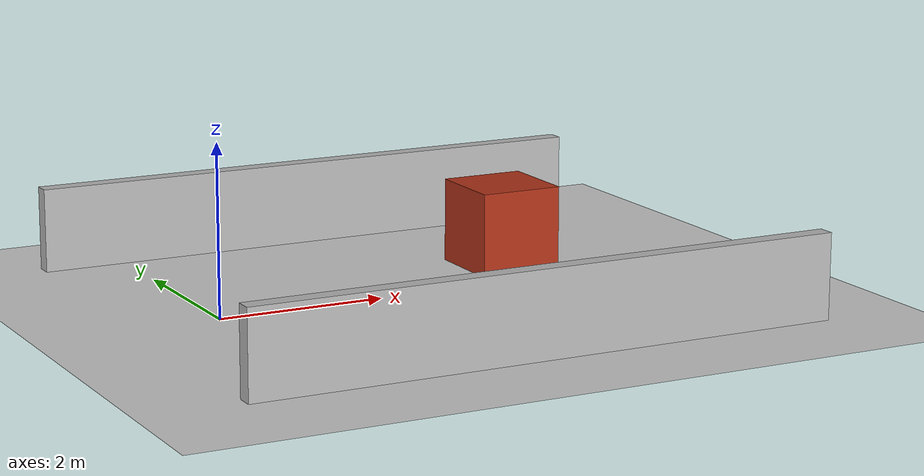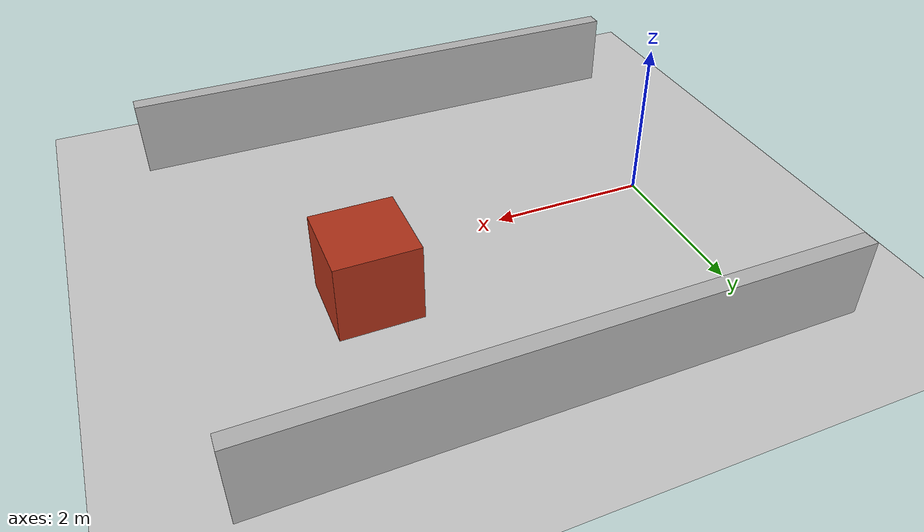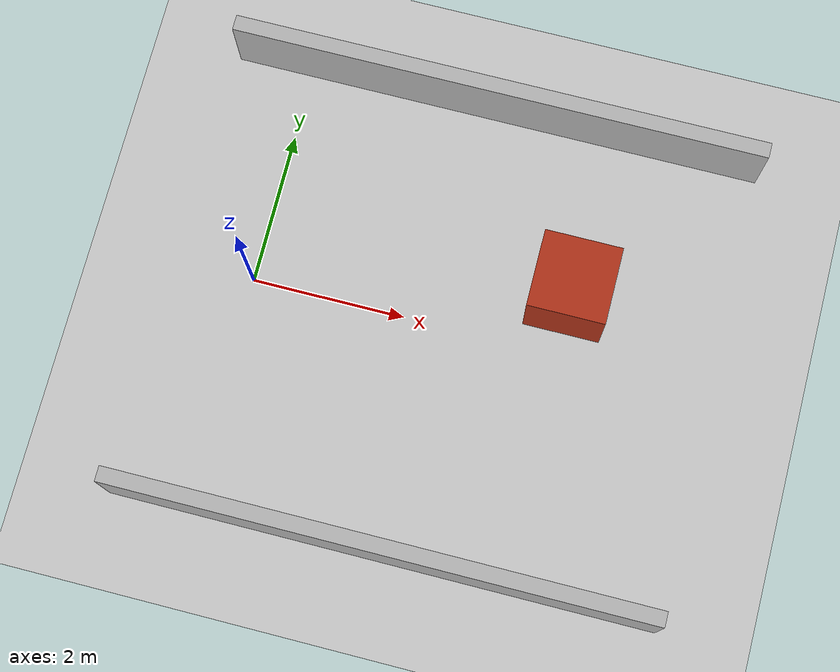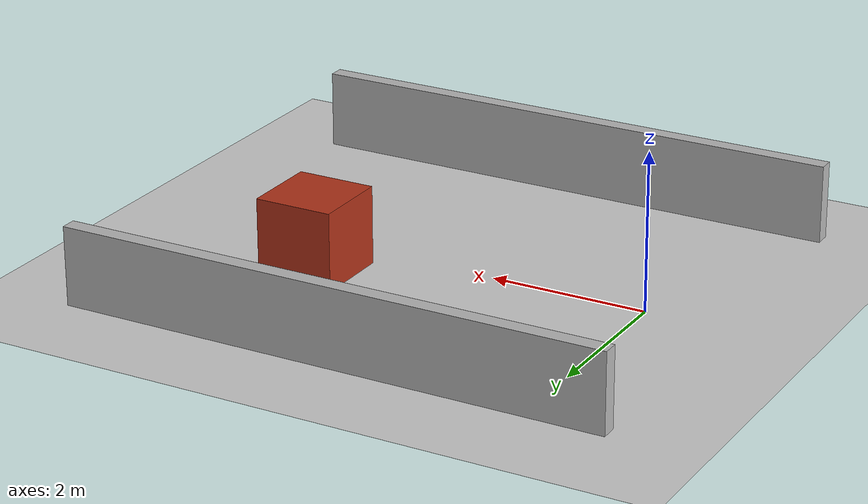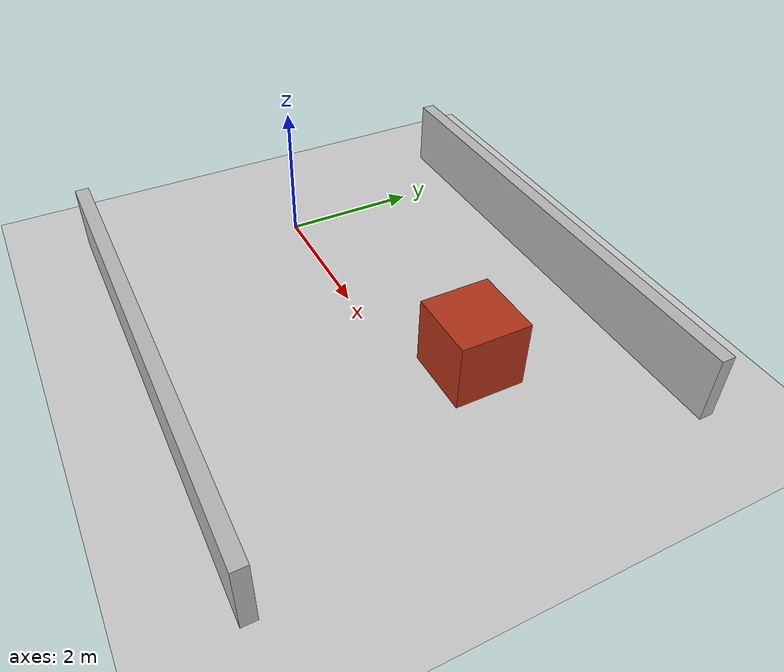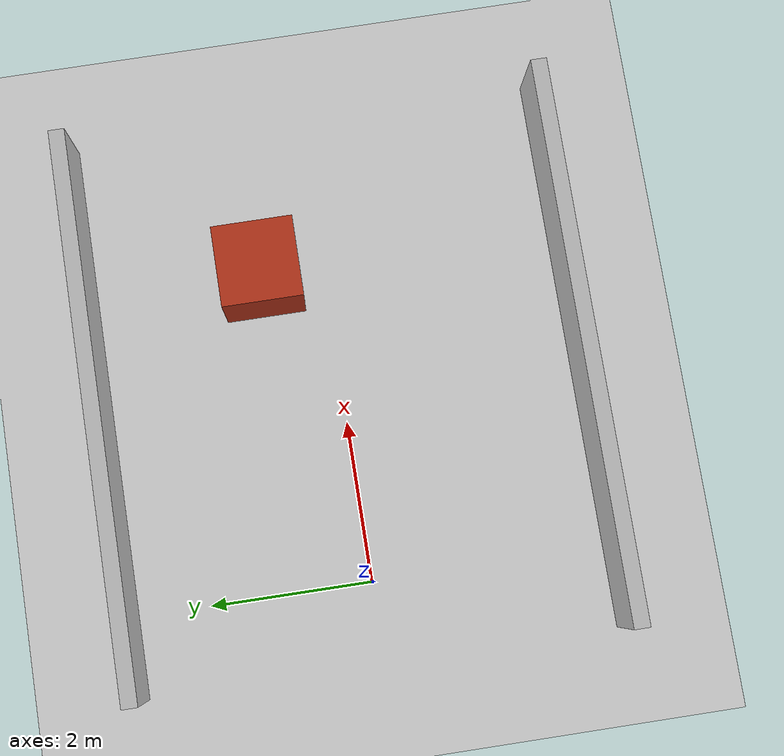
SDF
<?xml version="1.0"?>
<sdf version="1.6">
  <world name="m2_obstacle_test">
    <gravity>0 0 -9.81</gravity>
    <physics name="default_physics" type="ode">
      <max_step_size>0.002</max_step_size>
      <real_time_update_rate>500</real_time_update_rate>
    </physics>
    <include><uri>model://sun</uri></include>
    <include><uri>model://ground_plane</uri></include>
    <model name="front_box">
      <static>true</static>
      <pose>4.0 0.8 0.5 0 0 0</pose>
      <link name="link">
        <collision name="collision"><geometry><box><size>1.0 1.0 1.0</size></box></geometry></collision>
        <visual name="visual"><geometry><box><size>1.0 1.0 1.0</size></box></geometry><material><ambient>0.7 0.2 0.1 1</ambient></material></visual>
      </link>
    </model>
    <model name="left_wall">
      <static>true</static>
      <pose>2.5 3.0 0.5 0 0 0</pose>
      <link name="link">
        <collision name="collision"><geometry><box><size>7.0 0.2 1.0</size></box></geometry></collision>
        <visual name="visual"><geometry><box><size>7.0 0.2 1.0</size></box></geometry></visual>
      </link>
    </model>
    <model name="right_wall">
      <static>true</static>
      <pose>2.5 -3.0 0.5 0 0 0</pose>
      <link name="link">
        <collision name="collision"><geometry><box><size>7.0 0.2 1.0</size></box></geometry></collision>
        <visual name="visual"><geometry><box><size>7.0 0.2 1.0</size></box></geometry></visual>
      </link>
    </model>
  </world>
</sdf>
